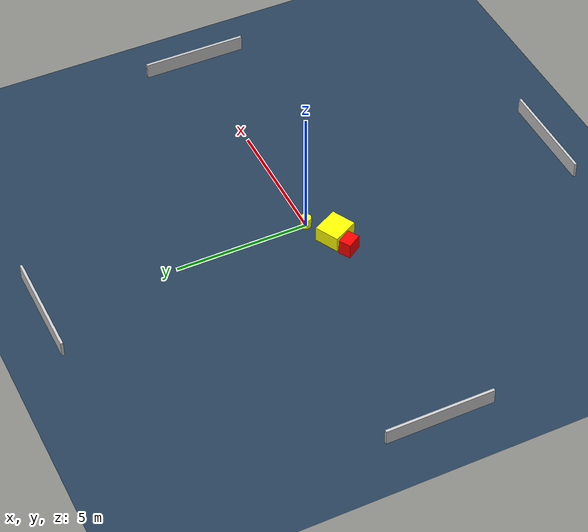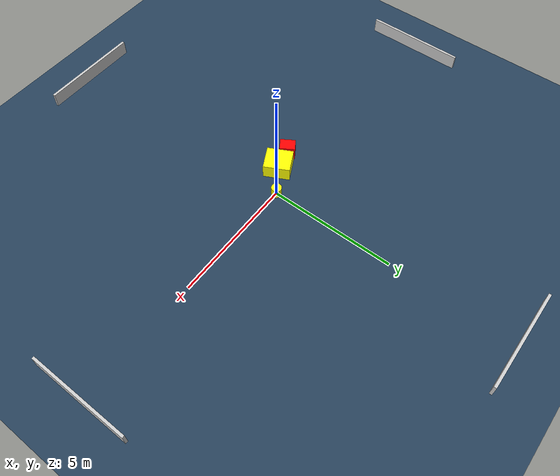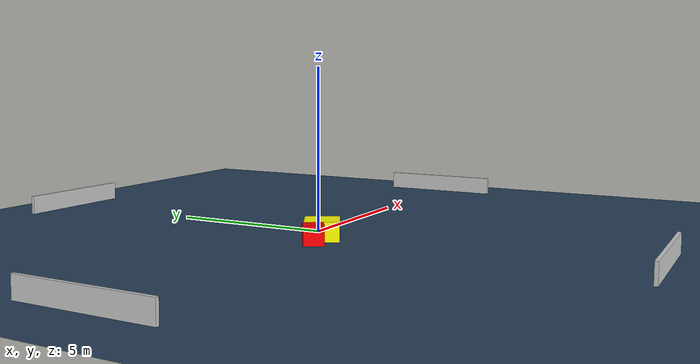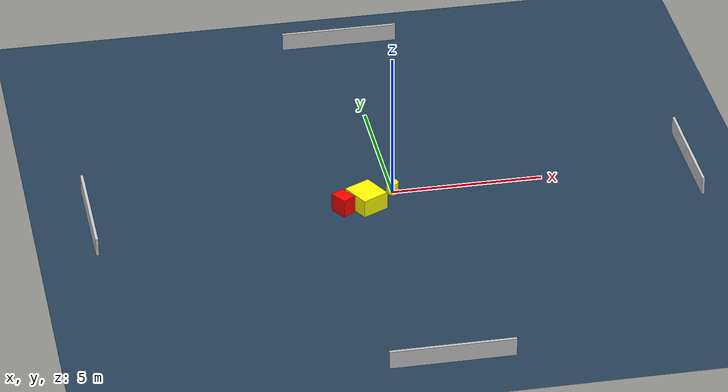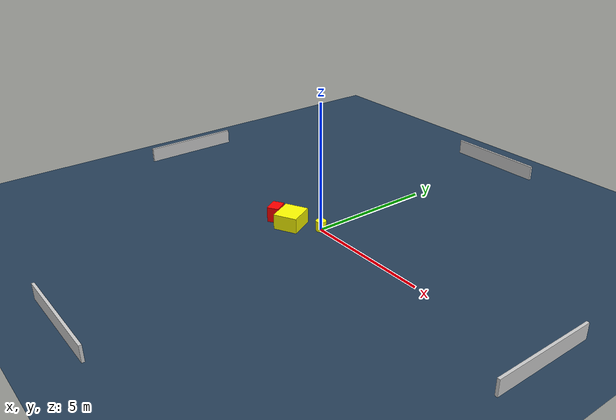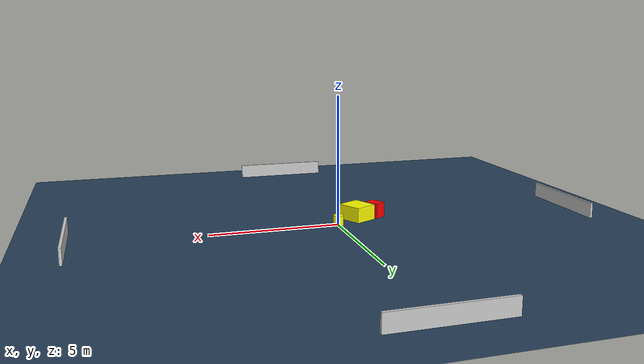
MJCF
<?xml version="1.0" ?>
<mujoco model="generated_environment">
  <option timestep="0.01" integrator="RK4" cone="elliptic"/>
  <default>
    <geom density="1"/>
  </default>
  <asset>
    <texture builtin="gradient" height="3072" name="skybox" rgb1="0.3 0.5 0.7" rgb2="0 0 0" type="skybox" width="512"/>
    <texture builtin="checker" height="300" name="groundplane" rgb1="0.2 0.3 0.4" rgb2="0.1 0.2 0.3" type="2d" width="300"/>
    <material name="groundplane" reflectance="0.2" texrepeat="5 5" texture="groundplane"/>
  </asset>
  <worldbody>
    <light dir="0 0 -1" directional="true" pos="0 0 1.5"/>
    <geom condim="3" friction="0.5 0.005 0.001" material="groundplane" name="floor" pos="0 0 0" size="0 0 0.05" type="plane"/>
    <body name="walls">
      <geom name="wall_1" condim="4" pos="-10.0 0.0 0.3" rgba="0.800000011920929 0.800000011920929 0.800000011920929 1.0" size="0.05 2.0 0.3" type="box"/>
      <geom name="wall_2" condim="4" pos="10.0 0.0 0.3" rgba="0.800000011920929 0.800000011920929 0.800000011920929 1.0" size="0.05 2.0 0.3" type="box"/>
      <geom name="wall_3" condim="4" pos="0.0 -10.0 0.3" rgba="0.800000011920929 0.800000011920929 0.800000011920929 1.0" size="2.0 0.05 0.3" type="box"/>
      <geom name="wall_4" condim="4" pos="0.0 10.0 0.3" rgba="0.800000011920929 0.800000011920929 0.800000011920929 1.0" size="2.0 0.05 0.3" type="box"/>
    </body>
    <body name="robot">
      <joint name="joint_x" type="slide" pos="0 0 0" axis="1 0 0"/>
      <joint name="joint_y" type="slide" pos="0 0 0" axis="0 1 0"/>
      <geom name="robot" type="cylinder" pos="0.0 0.0 0.2" size="0.2 0.2 0.0" mass="5.0" friction="1.0 0.005 0.0001" condim="4" rgba="1.0 1.0 0.0 1.0"/>
    </body>
    <body name="obstacle_1_movable">
      <geom name="obstacle_1_movable" condim="4" pos="-0.9933692647783742 -0.6759712469167682 0.3" euler="0 0 207.12757532532484" friction="0.0 0.005 0.001" rgba="1.0 1.0 0.0 1.0" size="0.47054014415581624 0.5177702311591135 0.3" type="box" mass="0.1"/>
      <joint type="free"/>
    </body>
    <body name="obstacle_2_static">
      <geom name="obstacle_2_static" condim="4" pos="-1.7838650837883492 -0.8288849487270763 0.3" euler="0 0 32.19168569970823" friction="0.0 0.005 0.001" rgba="1.0 0.0 0.0 1.0" size="0.23348584496464442 0.3031751151796758 0.3" type="box"/>
    </body>
  </worldbody>
  <actuator>
    <motor name="actuator_x" joint="joint_x" gear="1" ctrlrange="-1 1"/>
    <motor name="actuator_y" joint="joint_y" gear="1" ctrlrange="-1 1"/>
  </actuator>
</mujoco>
